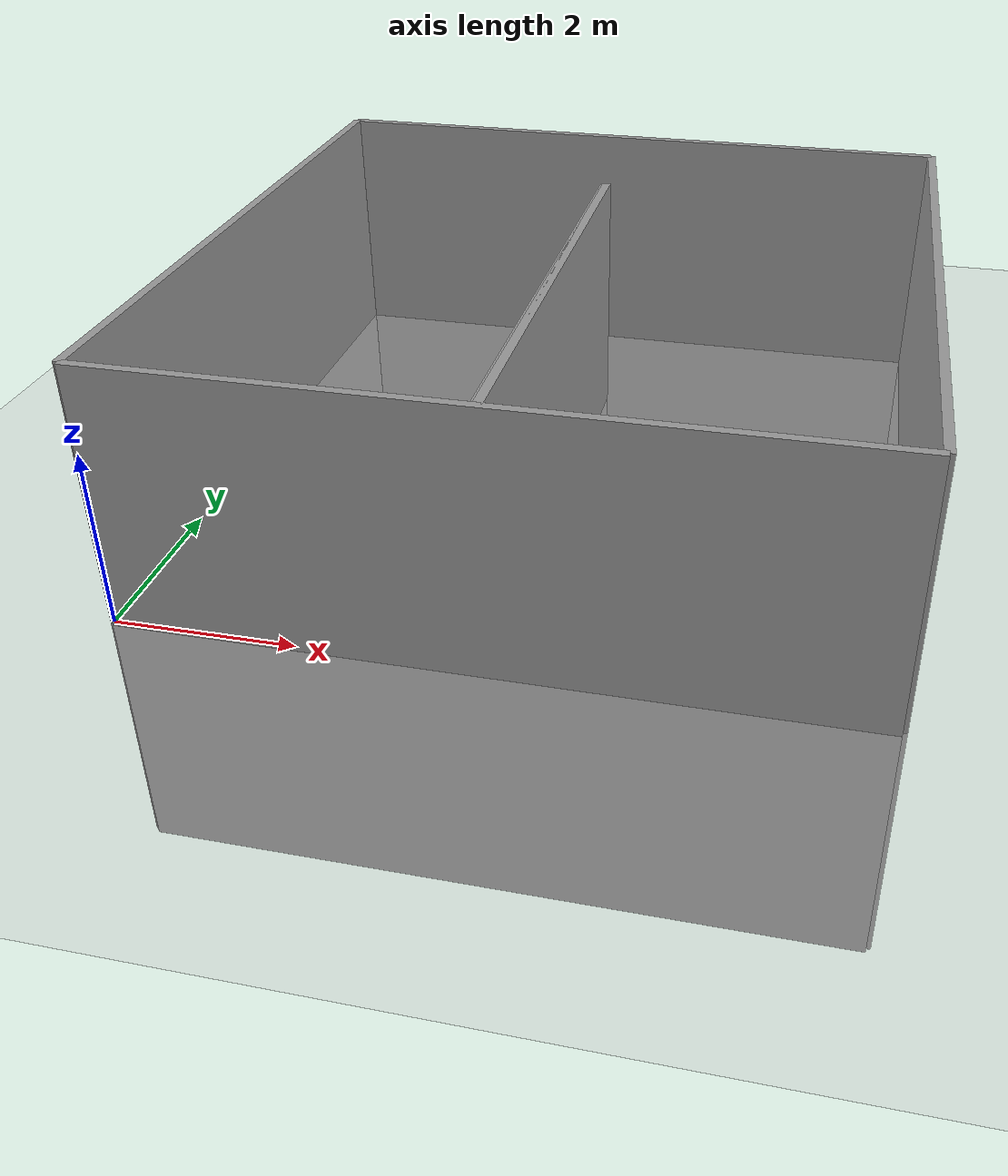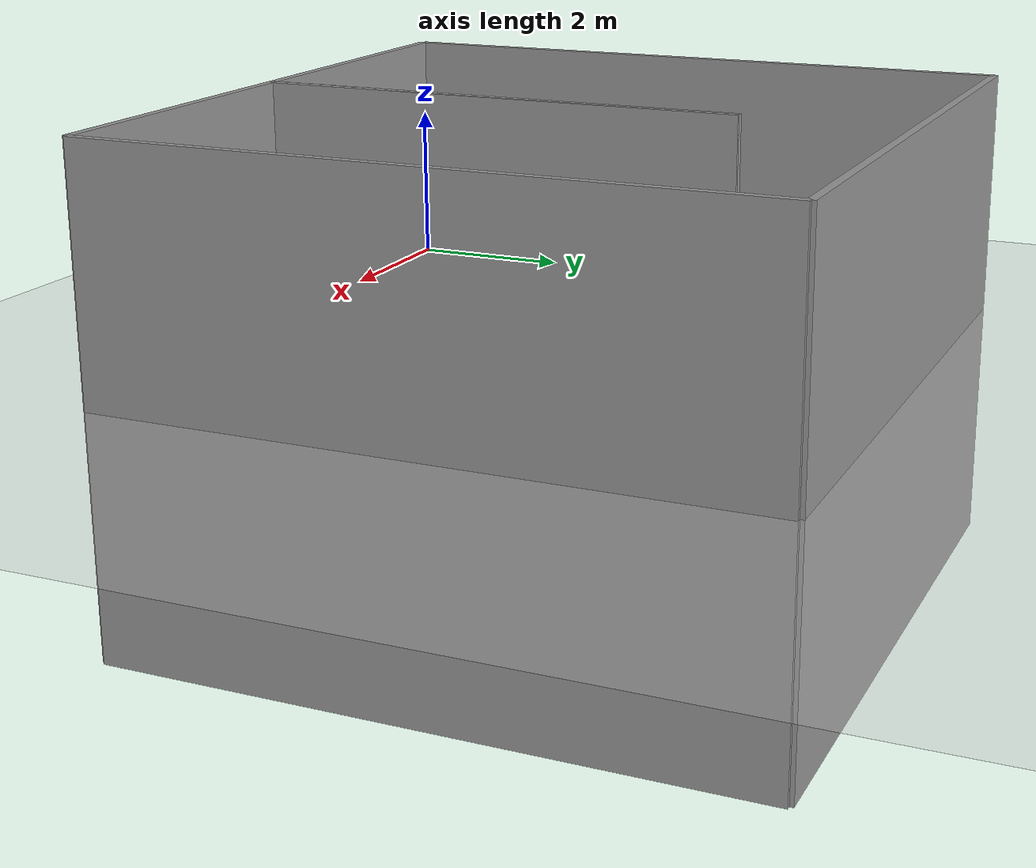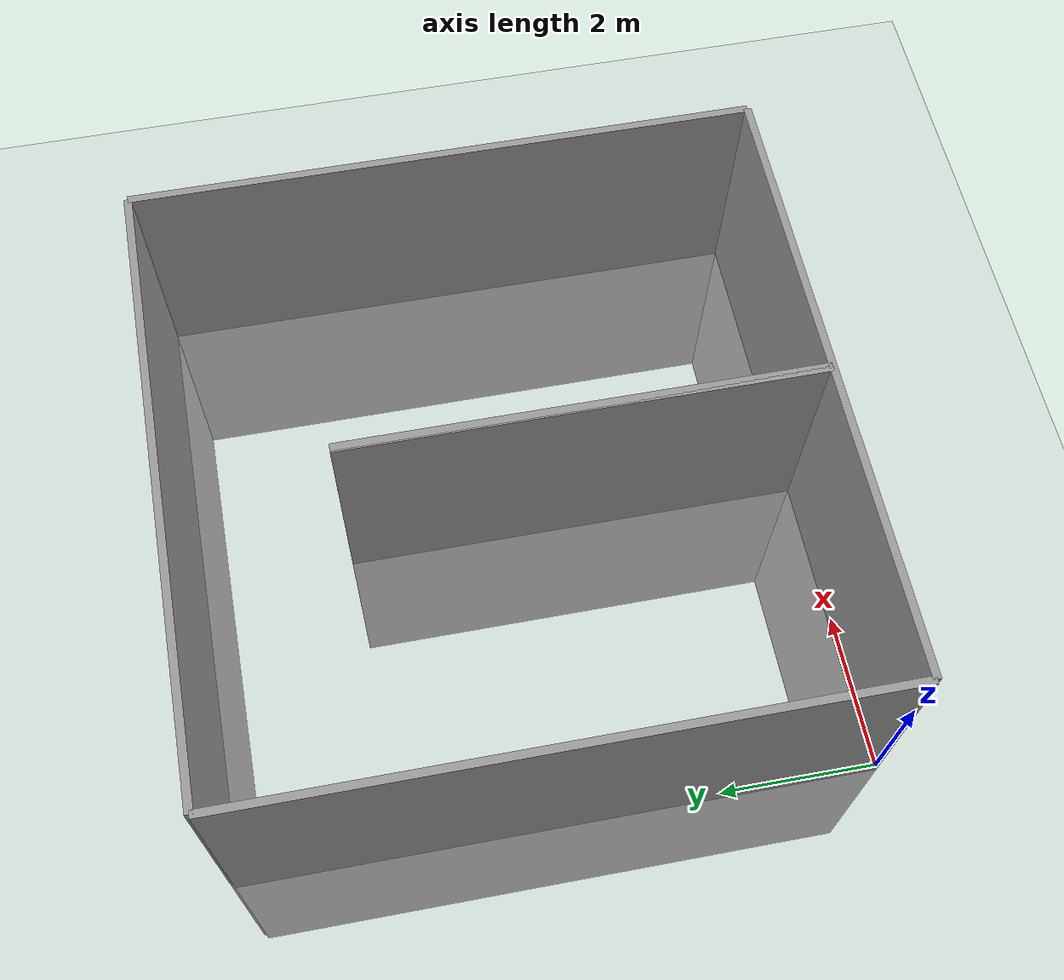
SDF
<sdf version='1.4'>
  <world name='default'>
    <light name='sun' type='directional'>
      <cast_shadows>1</cast_shadows>
      <pose>0 0 10 0 -0 0</pose>
      <diffuse>0.8 0.8 0.8 1</diffuse>
      <specular>0.2 0.2 0.2 1</specular>
      <attenuation>
        <range>1000</range>
        <constant>0.9</constant>
        <linear>0.01</linear>
        <quadratic>0.001</quadratic>
      </attenuation>
      <direction>-0.5 0.1 -0.9</direction>
    </light>
    <model name='ground_plane'>
      <static>1</static>
      <link name='link'>
        <collision name='collision'>
          <geometry>
            <plane>
              <normal>0 0 1</normal>
              <size>100 100</size>
            </plane>
          </geometry>
          <surface>
            <friction>
              <ode>
                <mu>100</mu>
                <mu2>50</mu2>
              </ode>
            </friction>
            <bounce/>
            <contact>
              <ode/>
            </contact>
          </surface>
          <max_contacts>10</max_contacts>
        </collision>
        <visual name='visual'>
          <cast_shadows>0</cast_shadows>
          <geometry>
            <plane>
              <normal>0 0 1</normal>
              <size>100 100</size>
            </plane>
          </geometry>
          <material>
            <script>
              <uri>file://media/materials/scripts/gazebo.material</uri>
              <name>Gazebo/Grey</name>
            </script>
          </material>
        </visual>
        <velocity_decay>
          <linear>0</linear>
          <angular>0</angular>
        </velocity_decay>
        <self_collide>0</self_collide>
        <kinematic>0</kinematic>
        <gravity>1</gravity>
      </link>
    </model>
    <physics type='ode'>
      <max_step_size>0.001</max_step_size>
      <real_time_factor>1</real_time_factor>
      <real_time_update_rate>1000</real_time_update_rate>
      <gravity>0 0 -9.8</gravity>
    </physics>
    <scene>
      <ambient>0.8 0.8 0.8 1</ambient>
      <background>0.7 0.7 0.7 1</background>
      <shadows>1</shadows>
    </scene>
    <spherical_coordinates>
      <surface_model>EARTH_WGS84</surface_model>
      <latitude_deg>0</latitude_deg>
      <longitude_deg>0</longitude_deg>
      <elevation>0</elevation>
      <heading_deg>0</heading_deg>
    </spherical_coordinates>
     <model name='grey_wall'>
      <static>1</static>
      <link name='link'>
        <pose>0 4 0 0 -0 1.57079633</pose>
        <collision name='collision'>
          <geometry>
            <box>
              <size>8 0.1 6</size>
            </box>
          </geometry>
          <max_contacts>10</max_contacts>
          <surface>
            <bounce/>
            <friction>
              <ode/>
            </friction>
            <contact>
              <ode/>
            </contact>
          </surface>
        </collision>
        <visual name='visual'>
          <cast_shadows>0</cast_shadows>
          <geometry>
            <box>
              <size>8 0.1 6</size>
            </box>
          </geometry>
          <material>
            <script>
              <uri>model://grey_wall/materials/scripts</uri>
              <uri>model://grey_wall/materials/textures</uri>
              <name>vrc/grey_wall_design</name>
            </script>
          </material>
        </visual>
        <velocity_decay>
          <linear>0</linear>
          <angular>0</angular>
        </velocity_decay>
        <self_collide>0</self_collide>
        <kinematic>0</kinematic>
        <gravity>1</gravity>
      </link>
      <pose>0 0 0 0 -0 0</pose>
    </model>

    <model name='grey_wall_0'>
      <static>1</static>
      <link name='link'>
        <pose>8 4 0 0 -0 1.57079633</pose>
        <collision name='collision'>
          <geometry>
            <box>
              <size>8 0.1 6</size>
            </box>
          </geometry>
          <max_contacts>10</max_contacts>
          <surface>
            <bounce/>
            <friction>
              <ode/>
            </friction>
            <contact>
              <ode/>
            </contact>
          </surface>
        </collision>
        <visual name='visual'>
          <cast_shadows>0</cast_shadows>
          <geometry>
            <box>
              <size>8 0.1 6</size>
            </box>
          </geometry>
          <material>
            <script>
              <uri>model://grey_wall/materials/scripts</uri>
              <uri>model://grey_wall/materials/textures</uri>
              <name>vrc/grey_wall_triangle</name>
            </script>
          </material>
        </visual>
        <velocity_decay>
          <linear>0</linear>
          <angular>0</angular>
        </velocity_decay>
        <self_collide>0</self_collide>
        <kinematic>0</kinematic>
        <gravity>1</gravity>
      </link>
      <pose>0 0 0 0 0 -0 </pose>
    </model>

    <model name='grey_wall_1'>
      <static>1</static>
      <link name='link'>
        <pose>4 0 0 0 -0 0</pose>
        <collision name='collision'>
          <geometry>
            <box>
              <size>8 0.1 6</size>
            </box>
          </geometry>
          <max_contacts>10</max_contacts>
          <surface>
            <bounce/>
            <friction>
              <ode/>
            </friction>
            <contact>
              <ode/>
            </contact>
          </surface>
        </collision>
        <visual name='visual'>
          <cast_shadows>0</cast_shadows>
          <geometry>
            <box>
              <size>8 0.1 6</size>
            </box>
          </geometry>
          <material>
            <script>
              <uri>model://grey_wall/materials/scripts</uri>
              <uri>model://grey_wall/materials/textures</uri>
              <name>vrc/grey_wall_square</name>
            </script>
          </material>
        </visual>
        <velocity_decay>
          <linear>0</linear>
          <angular>0</angular>
        </velocity_decay>
        <self_collide>0</self_collide>
        <kinematic>0</kinematic>
        <gravity>1</gravity>
      </link>
      <pose>0 0 0 0 0 -0 </pose>
    </model>

    <model name='grey_wall_2'>
      <static>1</static>
      <link name='link'>
        <pose>4 8 0 0 -0 0</pose>
        <collision name='collision'>
          <geometry>
            <box>
              <size>8 0.1 6</size>
            </box>
          </geometry>
          <max_contacts>10</max_contacts>
          <surface>
            <bounce/>
            <friction>
              <ode/>
            </friction>
            <contact>
              <ode/>
            </contact>
          </surface>
        </collision>
        <visual name='visual'>
          <cast_shadows>0</cast_shadows>
          <geometry>
            <box>
              <size>8 0.1 6</size>
            </box>
          </geometry>
          <material>
            <script>
              <uri>model://grey_wall/materials/scripts</uri>
              <uri>model://grey_wall/materials/textures</uri>
              <name>vrc/grey_wall</name>
            </script>
          </material>
        </visual>
        <velocity_decay>
          <linear>0</linear>
          <angular>0</angular>
        </velocity_decay>
        <self_collide>0</self_collide>
        <kinematic>0</kinematic>
        <gravity>1</gravity>
      </link>
      <pose>0 0 0 0 0 -0 </pose>
    </model>

    <model name='grey_wall_3'>
      <static>1</static>
      <link name='link'>
        <pose>4.01 3 0 0 -0 1.57079633</pose>
        <collision name='collision'>
          <geometry>
            <box>
              <size>6 0.1 6</size>
            </box>
          </geometry>
          <max_contacts>10</max_contacts>
          <surface>
            <bounce/>
            <friction>
              <ode/>
            </friction>
            <contact>
              <ode/>
            </contact>
          </surface>
        </collision>
        <visual name='visual'>
          <cast_shadows>0</cast_shadows>
          <geometry>
            <box>
              <size>6 0.1 6</size>
            </box>
          </geometry>
          <material>
            <script>
              <uri>model://grey_wall/materials/scripts</uri>
              <uri>model://grey_wall/materials/textures</uri>
              <name>vrc/grey_wall_stone</name>
            </script>
          </material>
        </visual>
        <velocity_decay>
          <linear>0</linear>
          <angular>0</angular>
        </velocity_decay>
        <self_collide>0</self_collide>
        <kinematic>0</kinematic>
        <gravity>1</gravity>
      </link>
      <pose>0 0 0 0 0 -0 </pose>
    </model>

    <model name='grey_wall_4'>
      <static>1</static>
      <link name='link'>
        <pose>3.99 3 0 0 -0 1.57079633</pose>
        <collision name='collision'>
          <geometry>
            <box>
              <size>6 0.1 6</size>
            </box>
          </geometry>
          <max_contacts>10</max_contacts>
          <surface>
            <bounce/>
            <friction>
              <ode/>
            </friction>
            <contact>
              <ode/>
            </contact>
          </surface>
        </collision>
        <visual name='visual'>
          <cast_shadows>0</cast_shadows>
          <geometry>
            <box>
              <size>6 0.1 6</size>
            </box>
          </geometry>
          <material>
            <script>
              <uri>model://grey_wall/materials/scripts</uri>
              <uri>model://grey_wall/materials/textures</uri>
              <name>vrc/grey_wall_tile</name>
            </script>
          </material>
        </visual>
        <velocity_decay>
          <linear>0</linear>
          <angular>0</angular>
        </velocity_decay>
        <self_collide>0</self_collide>
        <kinematic>0</kinematic>
        <gravity>1</gravity>
      </link>
      <pose>0 0 0 0 0 -0 </pose>
    </model>
    <gui fullscreen='0'>
      <camera name='user_camera'>
        <pose>0.897187 3.286 24.4673 -2e-06 1.5618 1.55217</pose>
        <view_controller>orbit</view_controller>
      </camera>
    </gui>
  </world>
</sdf>
